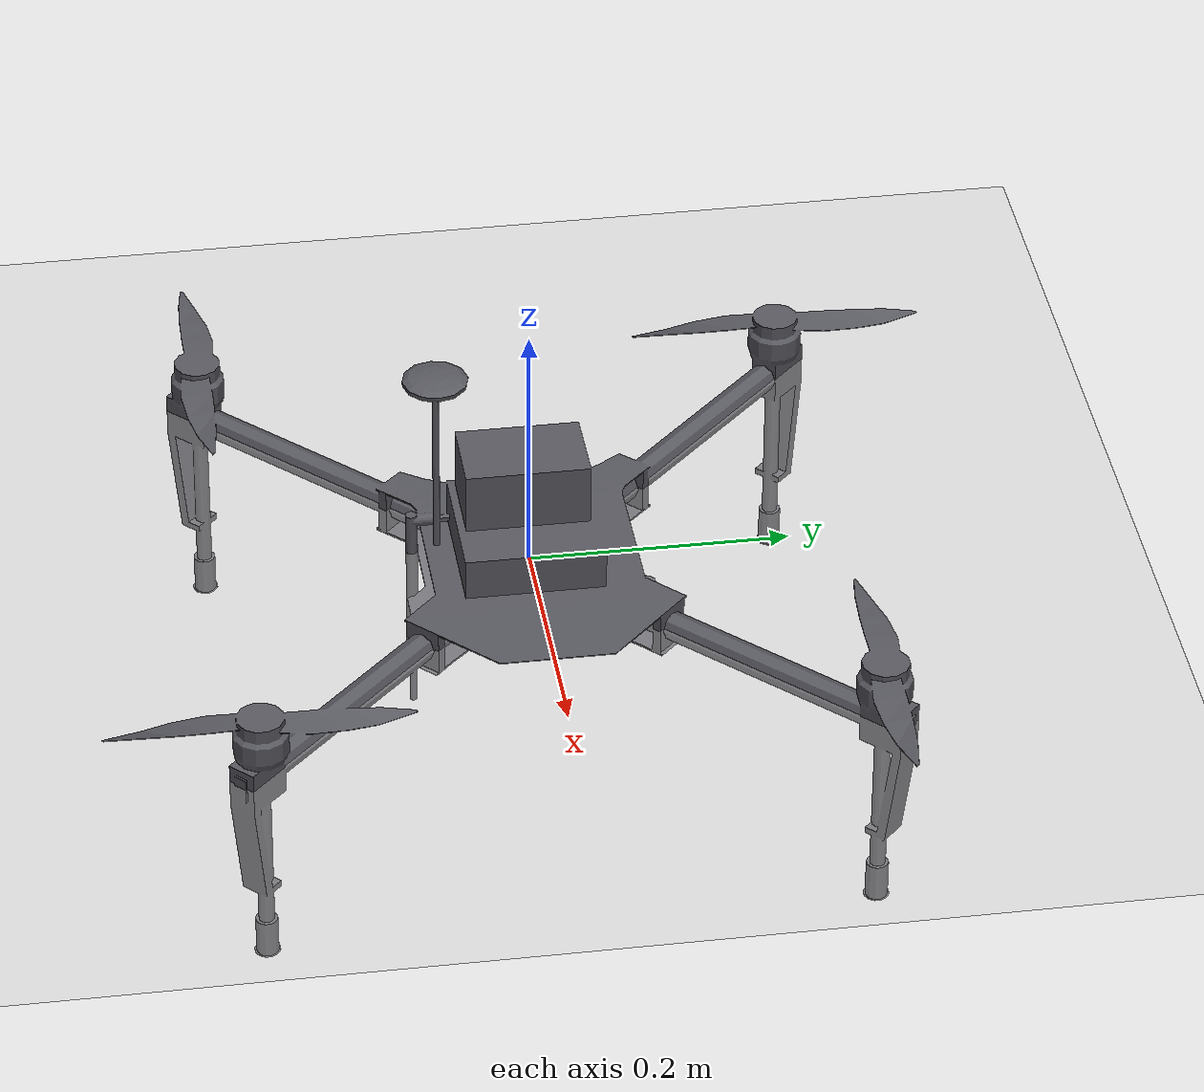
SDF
<?xml version="1.0" ?>
<!--
  Demo world to show how to include a model from Ignition Fuel.
-->
<sdf version="1.6">
  <world name="m100">
    <physics name="1ms" type="ignored">
      <max_step_size>0.001</max_step_size>
      <real_time_factor>1.0</real_time_factor>
    </physics>

    <scene>
      <ambient>1.0 1.0 1.0 1.0</ambient>
      <background>0.8 0.8 0.8 1.0</background>
      <grid>false</grid>
      <origin_visual>false</origin_visual>
    </scene>

    <plugin
      filename="ignition-gazebo-physics-system"
      name="ignition::gazebo::systems::Physics">
    </plugin>
    <plugin
      filename="ignition-gazebo-user-commands-system"
      name="ignition::gazebo::systems::UserCommands">
    </plugin>
    <plugin
      filename="ignition-gazebo-scene-broadcaster-system"
      name="ignition::gazebo::systems::SceneBroadcaster">
    </plugin>

    <light type="directional" name="sun">
      <cast_shadows>true</cast_shadows>
      <pose>0 0 10 0 0 0</pose>
      <diffuse>0.8 0.8 0.8 1</diffuse>
      <specular>0.2 0.2 0.2 1</specular>
      <attenuation>
        <range>1000</range>
        <constant>0.9</constant>
        <linear>0.01</linear>
        <quadratic>0.001</quadratic>
      </attenuation>
      <direction>-0.5 0.1 -0.9</direction>
    </light>

    <model name="ground_plane">
      <static>true</static>
      <link name="link">
        <collision name="collision">
          <geometry>
            <plane>
              <normal>0 0 1</normal>
              <size>100 100</size>
            </plane>
          </geometry>
        </collision>
        <visual name="visual">
          <geometry>
            <plane>
              <normal>0 0 1</normal>
              <size>100 100</size>
            </plane>
          </geometry>
          <material>
            <ambient>0.8 0.8 0.8 1</ambient>
            <diffuse>0.8 0.8 0.8 1</diffuse>
            <specular>0.8 0.8 0.8 1</specular>
          </material>
        </visual>
      </link>
    </model>

    <!-- mesh -->
    <include>
      <static>true</static>
      <name>Piraya</name>
      <pose>0 0 0 0 0 0</pose>
      <uri>model://matrice_100</uri>
    </include>

  </world>
</sdf>

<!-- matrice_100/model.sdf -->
<sdf version="1.6">
  <model name="dji">
    <static>true</static>
    <link name="robot_link">
      <collision name="collision">
        <geometry>
          <mesh>
            <uri>model://matrice_100/meshes/lrs_m100.stl</uri>
          </mesh>
        </geometry>
      </collision>

      <visual name="visual">
        <pose>0 0 0 0 0 0</pose>
        <geometry>
          <mesh>
            <uri>model://matrice_100/meshes/lrs_m100.dae</uri>
          </mesh>
        </geometry>
      </visual>
    </link>
  </model>
</sdf>
